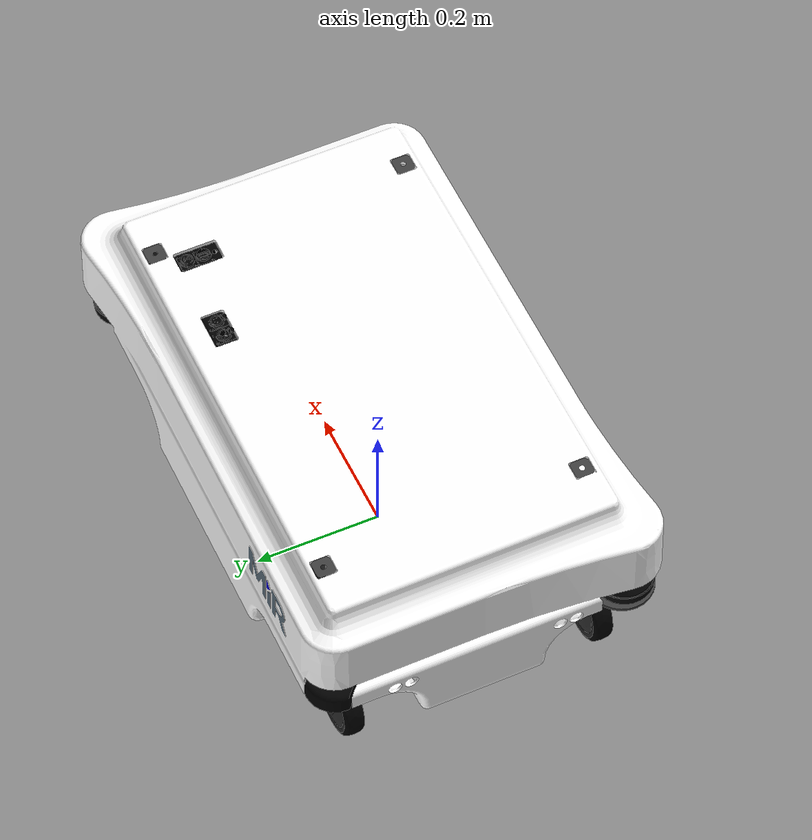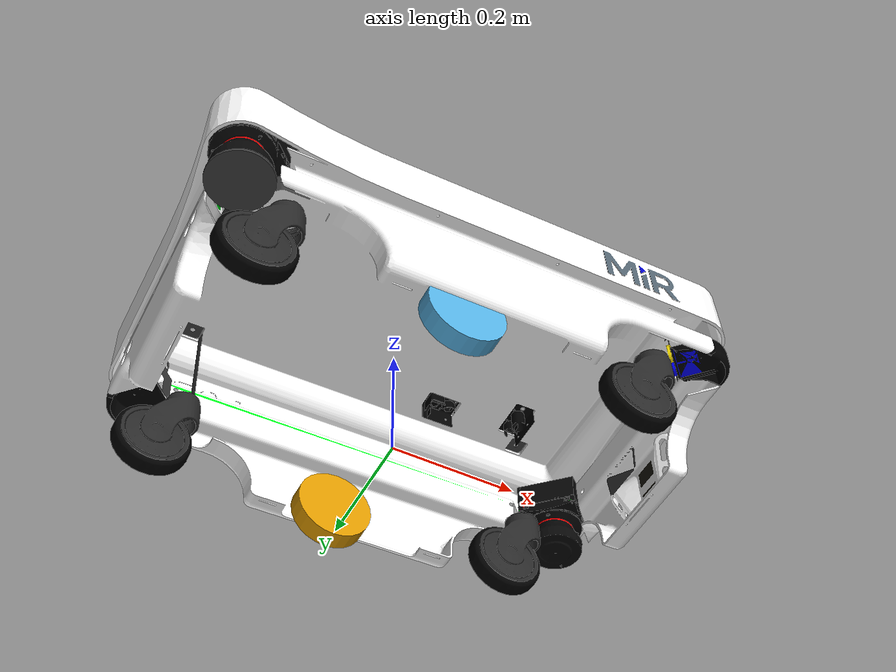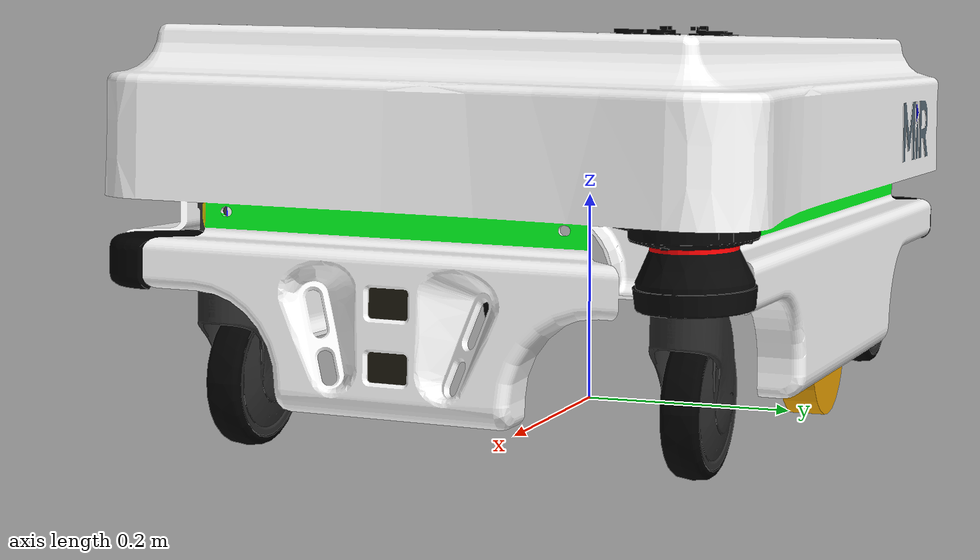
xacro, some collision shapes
<?xml version="1.0"?>
<robot xmlns:xacro="http://ros.org/wiki/xacro"
       name="mir" >

  <xacro:arg name="controller_config_file" default="$(find mir_description)/config/diff_drive_controller.yaml" />
  <!-- MiR base -->
  <xacro:include filename="$(find mir_description)/urdf/include/mir_v2.urdf.xacro" />
  <xacro:include filename="$(find mir_description)/urdf/include/common.gazebo.xacro" />

  <xacro:arg name="tf_prefix" default="" />
  <xacro:property name="tf_prefix_" value="$(arg tf_prefix)" />
  <xacro:if value="${tf_prefix_ == ''}">
    <xacro:property name="prefix" value="" />
  </xacro:if>
  <xacro:unless value="${tf_prefix_ == ''}">
    <xacro:property name="prefix" value="${tf_prefix_}/" />
  </xacro:unless>

  <xacro:mir prefix="${prefix}" controller_config_file="$(arg controller_config_file)"/>
  <xacro:arg name="simulation_engine" default="ignition-gazebo" />

  <xacro:controller_plugin_gazebo robot_namespace=""/>

</robot>

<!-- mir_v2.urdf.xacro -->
<robot xmlns:xacro="http://ros.org/wiki/xacro">
  <xacro:arg name="mir_type" default="mir_100" />   <!-- The MiR variant. Can be "mir_100" or "mir_250" for now.-->
  <xacro:property name="mir_type" value="$(arg mir_type)" />  <!-- necessary because args cannot be accessed inside ${} expressions -->

  <xacro:include filename="$(find mir_description)/urdf/include/common_properties.urdf.xacro" />
  <xacro:include filename="$(find mir_description)/urdf/include/imu.gazebo.urdf.xacro" />
  <xacro:include filename="$(find mir_description)/urdf/include/mir.gazebo.xacro" />
  <xacro:include filename="$(find mir_description)/urdf/include/mir.transmission.xacro" />
  <xacro:include filename="$(find mir_description)/urdf/include/sick_s300.urdf.xacro" />

  <xacro:property name="deg_to_rad" value="0.017453293" />

  <xacro:property name="mir_base_inertial_x" value="-0.05" />
  <xacro:property name="mir_base_inertial_y" value="0.0" />
  <xacro:property name="mir_base_inertial_z" value="0.15" />
  <xacro:property name="mir_base_inertial_x_length" value="0.50" />
  <xacro:property name="mir_base_inertial_y_length" value="0.30" />
  <xacro:property name="mir_base_inertial_z_length" value="0.20" />

  <xacro:if value="${mir_type == 'mir_100'}">
    <xacro:property name="mir_base_mass" value="62.5" />
    <xacro:property name="mir_act_wheel_radius" value="0.0625" />
    <xacro:property name="mir_act_wheel_width" value="0.032" />
    <xacro:property name="mir_act_wheel_mass" value="1.0" />
    <xacro:property name="mir_act_wheel_dx" value="0.037646" />
    <xacro:property name="mir_act_wheel_dy" value="0.222604" />
  </xacro:if>

  <xacro:if value="${mir_type == 'mir_200'}">
    <xacro:property name="mir_base_mass" value="70.0" />
    <xacro:property name="mir_act_wheel_radius" value="0.0625" />
    <xacro:property name="mir_act_wheel_width" value="0.032" />
    <xacro:property name="mir_act_wheel_mass" value="1.0" />
    <xacro:property name="mir_act_wheel_dx" value="0.037646" />
    <xacro:property name="mir_act_wheel_dy" value="0.222604" />
  </xacro:if>

  <xacro:if value="${mir_type == 'mir_250'}">
    <xacro:property name="mir_base_mass" value="97.0" />
    <xacro:property name="mir_act_wheel_radius" value="0.100" />
    <xacro:property name="mir_act_wheel_width" value="0.038" />
    <xacro:property name="mir_act_wheel_mass" value="1.0" />
    <xacro:property name="mir_act_wheel_dx" value="-0.004485" />
    <xacro:property name="mir_act_wheel_dy" value="0.2015" />
  </xacro:if>

  <xacro:property name="mir_caster_wheel_radius" value="0.0625" />
  <xacro:property name="mir_caster_wheel_width" value="0.032" />
  <xacro:property name="mir_caster_wheel_mass" value="1.0" />
  <xacro:property name="mir_caster_wheel_dx" value="-0.0382" />
  <xacro:property name="mir_caster_wheel_dy" value="0" />
  <xacro:property name="mir_caster_wheel_dz" value="-0.094" />
  <xacro:property name="mir_front_caster_wheel_base_dx" value="0.3037" />

  <xacro:if value="${mir_type == 'mir_100'}">
    <xacro:property name="mir_back_caster_wheel_base_dx"  value="0.3078" />
    <xacro:property name="mir_caster_wheel_base_dy" value="0.203" />
  </xacro:if>

  <xacro:if value="${mir_type == 'mir_200'}">
    <xacro:property name="mir_back_caster_wheel_base_dx"  value="0.3078" />
    <xacro:property name="mir_caster_wheel_base_dy" value="0.203" />
  </xacro:if>

  <xacro:if value="${mir_type == 'mir_250'}">
    <xacro:property name="mir_back_caster_wheel_base_dx"  value="0.296" />
    <xacro:property name="mir_caster_wheel_base_dy" value="0.188" />
  </xacro:if>

  <xacro:property name="mir_caster_wheel_base_dz" value="${mir_caster_wheel_radius - mir_caster_wheel_dz}" />

  <!-- from visually matching up the meshes of the MiR and the laser scanner -->
  <xacro:if value="${mir_type == 'mir_100'}">
    <xacro:property name="laser_dx" value="0.392" />
    <xacro:property name="laser_dy" value="0.2358" />
  </xacro:if>

  <xacro:if value="${mir_type == 'mir_200'}">
    <xacro:property name="laser_dx" value="0.392" />
    <xacro:property name="laser_dy" value="0.2358" />
  </xacro:if>

  <xacro:if value="${mir_type == 'mir_250'}">
    <xacro:property name="laser_dx" value="0.315" />
    <xacro:property name="laser_dy" value="0.205" />
  </xacro:if>

  <xacro:property name="laser_dz" value="0.1914" />

  <xacro:macro name="actuated_wheel" params="prefix locationprefix locationright">
    <joint name="${prefix}${locationprefix}_wheel_joint" type="continuous">
      <origin xyz="0.0 ${-mir_act_wheel_dy * locationright} ${mir_act_wheel_radius}" rpy="0 0 0" />
      <parent link="${prefix}base_link" />
      <child link="${prefix}${locationprefix}_wheel_link" />
      <axis xyz="0 1 0" />
      <limit effort="100" velocity="20.0" />
    </joint>

    <link name="${prefix}${locationprefix}_wheel_link">
      <xacro:cylinder_inertial mass="${mir_act_wheel_mass}" radius="${mir_act_wheel_radius}" length="${mir_act_wheel_width}">
        <origin xyz="0 0 0" rpy="${0.5 * pi} 0 0" />
      </xacro:cylinder_inertial>
      <visual>
        <xacro:if value="${locationright == -1}">
          <origin xyz="-0.0262 ${(-2 * -mir_act_wheel_dy * locationright) + mir_act_wheel_radius/4} 0.423" rpy="0 0 ${locationright * pi}" />
        </xacro:if>
        <xacro:if value="${locationright == 1}">
          <origin xyz="0.0262 ${(-2 * -mir_act_wheel_dy * locationright) - mir_act_wheel_radius/4} 0.423" rpy="0 0 0" />
        </xacro:if>
        <geometry>
          <mesh filename="package://mir_description/meshes/${mir_type}/visual/wheel.dae" />
        </geometry>
      </visual>
      <collision>
        <origin xyz="0 0 0" rpy="${pi/2} 0 0" />
        <geometry>
          <cylinder radius="${mir_act_wheel_radius}" length="${mir_act_wheel_width}" />
        </geometry>
      </collision>
    </link>
  </xacro:macro>

  <xacro:macro name="caster_wheel" params="prefix locationprefix locationright wheel_base_dx">
    <!-- caster hub -->
    <joint name="${prefix}${locationprefix}_caster_rotation_joint" type="continuous">
      <origin xyz="${wheel_base_dx} ${-mir_caster_wheel_base_dy * locationright} ${mir_caster_wheel_base_dz}" rpy="0 0 0" />
      <parent link="${prefix}base_link" />
      <child link="${prefix}${locationprefix}_caster_rotation_link" />
      <axis xyz="0 0 1" />
      <dynamics damping="0.01" friction="0.0"/>
    </joint>

    <link name="${prefix}${locationprefix}_caster_rotation_link">
      <inertial>
        <origin xyz="0 0 -0.042500000044" rpy="${24 * deg_to_rad} 0 ${0.5 * pi} " />
        <mass value="0.3097539019" />
        <inertia
          ixx="0.0005844517978"
          ixy="0"
          ixz="0"
          iyy="0.00052872551237"
          iyz="0"
          izz="0.00017923555074" />
      </inertial>
      <visual>
        <origin xyz="-0.12 0.07 0.202" rpy="0 0 0" />
        <geometry>
          <mesh filename="package://mir_description/meshes/${mir_type}/visual/caster-wheel-base.dae" />
        </geometry>
      </visual>
    </link>

    <!-- caster wheel -->
    <joint name="${prefix}${locationprefix}_caster_wheel_joint" type="continuous">
      <origin xyz="${mir_caster_wheel_dx} ${-mir_caster_wheel_dy * locationright} ${mir_caster_wheel_dz}" rpy="0 0 0" />
      <parent link="${prefix}${locationprefix}_caster_rotation_link" />
      <child link="${prefix}${locationprefix}_caster_wheel_link" />
      <axis xyz="0 1 0" />
    </joint>

    <link name="${prefix}${locationprefix}_caster_wheel_link">
      <xacro:cylinder_inertial mass="${mir_caster_wheel_mass}" radius="${mir_caster_wheel_radius}" length="${mir_caster_wheel_width}">
        <origin xyz="0 0 0" rpy="${0.5 * pi} 0 0" />
      </xacro:cylinder_inertial>
      <visual>
        <origin xyz="-0.082 0.48 0.2875" rpy="0 0 0" />
        <geometry>
          <mesh filename="package://mir_description/meshes/${mir_type}/visual/caster-wheel.dae" />
        </geometry>
      </visual>
      <collision>
        <origin xyz="0 0 0" rpy="${pi/2} 0 0" />
        <geometry>
          <cylinder radius="${mir_caster_wheel_radius}" length="${mir_caster_wheel_width}" />
        </geometry>
      </collision>
    </link>
  </xacro:macro>

  <xacro:macro name="mir" params="prefix controller_config_file">
    <link name="${prefix}base_footprint" />

    <joint name="${prefix}base_joint" type="fixed">
      <parent link="${prefix}base_footprint" />
      <child link="${prefix}base_link" />
      <origin xyz="0 0 0" rpy="0 0 0" />
    </joint>

    <link name="${prefix}base_link">
      <xacro:box_inertial mass="${mir_base_mass}" x="${mir_base_inertial_x_length}" y="${mir_base_inertial_y_length}" z="${mir_base_inertial_z_length}">
        <origin xyz="${mir_base_inertial_x + mir_act_wheel_dx} ${mir_base_inertial_y} ${mir_base_inertial_z}" rpy="0 0 0" />
      </xacro:box_inertial>
      <visual>
        <origin xyz="-0.39 0.275 0.34875" rpy="0 0 0" />
        <geometry>
          <mesh filename="package://mir_description/meshes/${mir_type}/visual/base.dae" />
        </geometry>
      </visual>
      <collision>
        <origin xyz="-0.39 0.275 0.34875" rpy="0 0 0" />
        <geometry>
          <mesh filename="package://mir_description/meshes/${mir_type}/collision/base.stl" />
        </geometry>
      </collision>
    </link>

    <!-- IMU -->
    <joint name="${prefix}base_link_to_imu_joint" type="fixed">
      <parent link="${prefix}base_link" />
      <child link="${prefix}imu_link" />
      <origin xyz="0.0 0.0 0.25" rpy="0 0 0" />  <!-- same as real MiR -->
    </joint>

    <link name="${prefix}imu_link">
      <xacro:imu_gazebo link="${prefix}imu_link" imu_topic="imu_data" update_rate="50.0" />
    </link>

    <!-- Create an alias for imu_link. This is necessary because the real MiR's
         TF has imu_link, but the imu_data topic is published in the imu_frame
         frame. -->
    <joint name="${prefix}imu_link_to_imu_frame_joint" type="fixed">
      <parent link="${prefix}imu_link" />
      <child link="${prefix}imu_frame" />
      <origin xyz="0 0 0" rpy="0 0 0" />
    </joint>

    <link name="${prefix}imu_frame" />

    <!-- Laser scanners -->
    <joint name="${prefix}base_link_to_front_laser_joint" type="fixed">
      <parent link="${prefix}base_link" />
      <child link="${prefix}front_laser_link" />
      <origin xyz="${laser_dx + mir_act_wheel_dx} ${laser_dy} ${laser_dz}" rpy="0.0 0.0 ${0.25 * pi}" />
    </joint>
    <xacro:sick_s300 prefix="${prefix}" link="front_laser_link" topic="f_scan" />

    <joint name="${prefix}base_link_to_back_laser_joint" type="fixed">
      <parent link="${prefix}base_link" />
      <child link="${prefix}back_laser_link" />
      <origin xyz="${-laser_dx + mir_act_wheel_dx} ${-laser_dy} ${laser_dz}" rpy="0.0 0.0 ${-0.75 * pi}" />
    </joint>

    <xacro:sick_s300 prefix="${prefix}" link="back_laser_link" topic="b_scan" />

    <!-- Ultrasound sensors -->
    <joint name="${prefix}us_1_joint" type="fixed">   <!-- right ultrasound -->
      <parent link="${prefix}base_link" />
      <child link="${prefix}us_1_frame" />
      <origin xyz="0.45 -0.12 0.16 " rpy="0 0 0" />  <!-- from visually matching to the mesh of the MiR -->
    </joint>

    <link name="${prefix}us_1_frame" />

    <joint name="${prefix}us_2_joint" type="fixed">   <!-- left ultrasound -->
      <parent link="${prefix}base_link" />
      <child link="${prefix}us_2_frame" />
      <origin xyz="0.45 0.12 0.16 " rpy="0 0 0" />  <!-- from visually matching to the mesh of the MiR -->
    </joint>

    <link name="${prefix}us_2_frame" />

    <!-- wheels -->
    <xacro:actuated_wheel prefix="${prefix}" locationprefix="left" locationright="-1"/>
    <xacro:actuated_wheel prefix="${prefix}" locationprefix="right" locationright="1"/>
    <xacro:caster_wheel prefix="${prefix}" locationprefix="fl" locationright="-1" wheel_base_dx="${mir_front_caster_wheel_base_dx + mir_act_wheel_dx}"/>
    <xacro:caster_wheel prefix="${prefix}" locationprefix="fr" locationright="1" wheel_base_dx="${mir_front_caster_wheel_base_dx + mir_act_wheel_dx}"/>
    <xacro:caster_wheel prefix="${prefix}" locationprefix="bl" locationright="-1" wheel_base_dx="${-mir_back_caster_wheel_base_dx + mir_act_wheel_dx}"/>
    <xacro:caster_wheel prefix="${prefix}" locationprefix="br" locationright="1" wheel_base_dx="${-mir_back_caster_wheel_base_dx + mir_act_wheel_dx}"/>

    <joint name="${prefix}base_link_surface_joint" type="fixed">
      <origin xyz="${mir_act_wheel_dx} 0 0.352" rpy="0 0 0" />
      <parent link="${prefix}base_link" />
      <child link="${prefix}surface" />
      <axis xyz="0 0 1" />
    </joint>

    <link name="${prefix}surface"/>

    <xacro:mir_wheel_transmissions prefix="${prefix}"/>

    <!-- set the gazebo friction parameters for the wheels -->
    <xacro:set_all_wheel_frictions prefix="${prefix}"/>
  </xacro:macro>
</robot>

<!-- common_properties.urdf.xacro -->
<!--
  Various useful properties such as constants and materials
 -->
<robot name="xacro_properties" xmlns:xacro="http://ros.org/wiki/xacro">
  <!-- #################### RViz materials #################### -->
  <xacro:property name="material_white">
    <material name="white">
      <color rgba="1 1 1 1"/>
    </material>
  </xacro:property>
  <xacro:property name="material_yellow">
    <material name="yellow">
      <color rgba="${255/255} ${226/255} ${0/255} 1"/>
    </material>
  </xacro:property>
  <xacro:property name="material_almost_white">
    <material name="almost_white">
      <color rgba="0.9 0.9 0.9 1" />
    </material>
  </xacro:property>
  <xacro:property name="material_grey">
    <material name="grey">
      <color rgba="0.5 0.5 0.5 1"/>
    </material>
  </xacro:property>
  <xacro:property name="material_light_grey">
    <material name="light_grey">
      <color rgba="0.6 0.6 0.6 1"/>
    </material>
  </xacro:property>
  <xacro:property name="material_dark_grey">
    <material name="dark_grey">
      <color rgba="0.3 0.3 0.3 1"/>
    </material>
  </xacro:property>
  <xacro:property name="material_black">
    <material name="black">
      <color rgba="0.1 0.1 0.1 1"/>
    </material>
  </xacro:property>
  <xacro:property name="material_silver">
    <material name="silver">
      <color rgba="0.79 0.82 0.93 1" />
    </material>
  </xacro:property>
    <xacro:property name="material_blue">
    <material name="silver">
      <color rgba="0.1 0.1 0.8 1" />
    </material>
  </xacro:property>

  <!-- #################### inertials with origin #################### -->
  <!-- see https://secure.wikimedia.org/wikipedia/en/wiki/List_of_moment_of_inertia_tensors -->
  <xacro:macro name="sphere_inertial" params="radius mass *origin">
    <inertial>
      <mass value="${mass}" />
      <xacro:insert_block name="origin" />
      <inertia ixx="${0.4 * mass * radius * radius}" ixy="0.0" ixz="0.0"
        iyy="${0.4 * mass * radius * radius}" iyz="0.0"
        izz="${0.4 * mass * radius * radius}" />
    </inertial>
  </xacro:macro>

  <xacro:macro name="cylinder_inertial" params="radius length mass *origin">
    <inertial>
      <mass value="${mass}" />
      <xacro:insert_block name="origin" />
      <inertia ixx="${0.0833333 * mass * (3 * radius * radius + length * length)}" ixy="0.0" ixz="0.0"
        iyy="${0.0833333 * mass * (3 * radius * radius + length * length)}" iyz="0.0"
        izz="${0.5 * mass * radius * radius}" />
    </inertial>
  </xacro:macro>

  <xacro:macro name="box_inertial" params="x y z mass *origin">
    <inertial>
      <mass value="${mass}" />
      <xacro:insert_block name="origin" />
      <inertia ixx="${0.0833333 * mass * (y*y + z*z)}" ixy="0.0" ixz="0.0"
        iyy="${0.0833333 * mass * (x*x + z*z)}" iyz="0.0"
        izz="${0.0833333 * mass * (x*x + y*y)}" />
    </inertial>
  </xacro:macro>
</robot>

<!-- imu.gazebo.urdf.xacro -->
<robot xmlns:xacro="http://ros.org/wiki/xacro">
  <!-- If tf_prefix is given, use "frame tf_prefix/imu_frame", else "imu_frame" -->
  <xacro:arg name="tf_prefix" default="" />
  <xacro:property name="tf_prefix" value="$(arg tf_prefix)" />
  <xacro:if value="${tf_prefix == ''}">
      <xacro:property name="imu_frame" value="imu_frame" />
  </xacro:if>
  <xacro:unless value="${tf_prefix == ''}">
      <xacro:property name="imu_frame" value="$(arg tf_prefix)/imu_frame" />
  </xacro:unless>

  <xacro:macro name="imu_gazebo" params="link imu_topic update_rate">
    <gazebo>
      <sensor name="tb3_imu" type="imu">
        <always_on>true</always_on>
        <update_rate>200</update_rate>
        <topic>imu</topic>
        <imu>
          ...
        </imu>
      </sensor>
      <sensor name="camera" type="camera">
        <always_on>true</always_on>
        <visualize>true</visualize>
        <update_rate>30</update_rate>
        <topic>camera/image_raw</topic>
        <gz_frame_id>camera_rgb_frame</gz_frame_id>
        <camera name="intel_realsense_r200">
          <camera_info_topic>camera/camera_info</camera_info_topic>
          ...
        </camera>
      </sensor>
    </gazebo>
  </xacro:macro>
</robot>

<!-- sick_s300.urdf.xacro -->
<robot xmlns:xacro="http://ros.org/wiki/xacro">

  <xacro:include filename="$(find mir_description)/urdf/include/common_properties.urdf.xacro" />

  <xacro:property name="laser_x" value="0.156" />
  <xacro:property name="laser_y" value="0.155" />
  <xacro:property name="laser_z" value="0.185" />
  <xacro:property name="laser_mass" value="1.2" />

  <xacro:macro name="sick_s300" params="link topic prefix">

    <link name="${prefix}${link}">
      <visual>
        <origin xyz="-0.335 -0.385 0.1555" rpy="0 0 ${3*pi/4}" />
        <geometry>
          <mesh filename="package://mir_description/meshes/mir_100/visual/SICK-lidar.dae" />
        </geometry>
      </visual>
      <xacro:box_inertial x="${laser_x}" y="${laser_y}" z="${laser_z}" mass="${laser_mass}">
        <origin xyz="0 0 0" />
      </xacro:box_inertial>
    </link>

    <gazebo reference="${prefix}${link}">
      <sensor name='${prefix}${link}' type='gpu_lidar'>
          <pose relative_to='${prefix}${link}'>0 0 0 0 0 0</pose>
          <topic>${topic}</topic>
          <update_rate>12.5</update_rate>
          <gz_frame_id>base_scan</gz_frame_id>
          <lidar>
              <scan>
                  <horizontal>
                      <samples>541</samples>
                      <resolution>1</resolution>
                      <min_angle>-2.35619449615</min_angle>
                      <max_angle>2.35619449615</max_angle>
                  </horizontal>
                  <vertical>
                      <samples>1</samples>
                      <resolution>0.01</resolution>
                      <min_angle>0</min_angle>
                      <max_angle>0</max_angle>
                  </vertical>
              </scan>
              <range>
                  <min>0.05</min>
                  <max>29.0</max>
                  <resolution>0.01</resolution>
              </range>
          </lidar>
          <always_on>true</always_on>
          <visualize>true</visualize>
      </sensor>
    </gazebo>
  </xacro:macro>
</robot>
